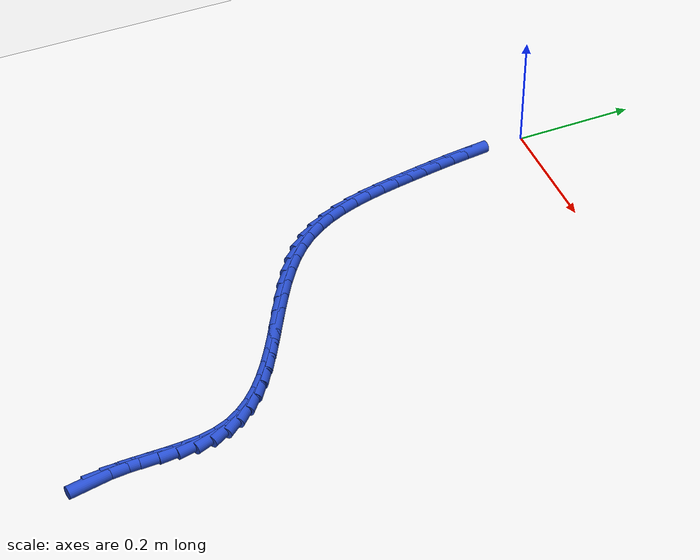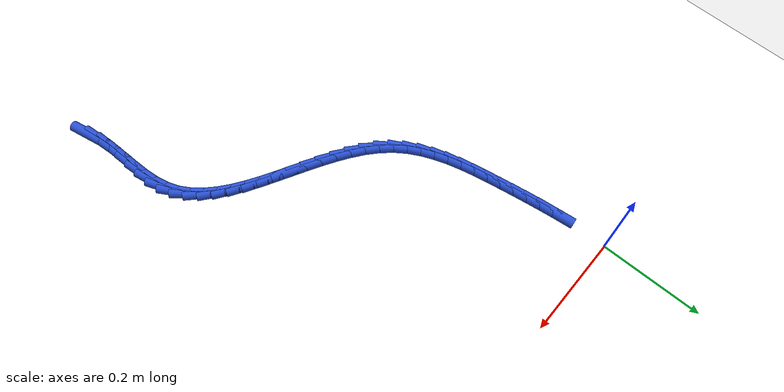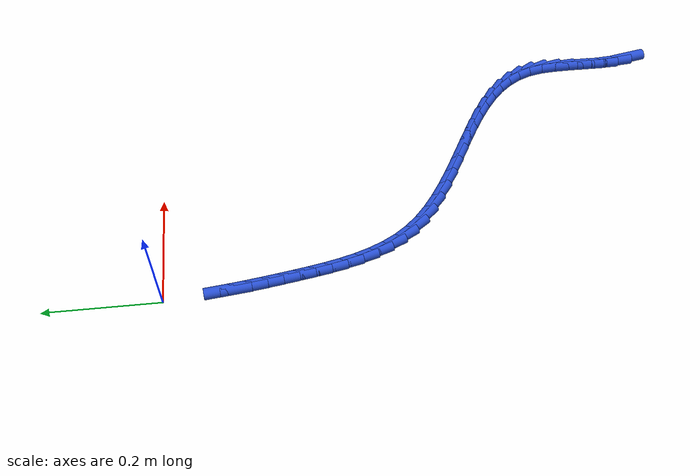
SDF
<sdf version="1.6">
 <world name="default">
  <model name="ground_plane">
   <static>1</static>
   <link name="link">
    <collision name="collision">
     <geometry><plane><normal>0 0 1</normal><size>100 100</size></plane></geometry>
     <surface><friction><ode><mu>100</mu><mu2>50</mu2></ode></friction></surface>
    </collision>
    <visual name="visual">
     <cast_shadows>0</cast_shadows>
     <geometry><plane><normal>0 0 1</normal><size>100 100</size></plane></geometry>
     <material>
      <script><uri>file://media/materials/scripts/gazebo.material</uri><name>Gazebo/WhiteGlow</name></script>
     </material>
    </visual>
   </link>
  </model>
  <model name="line">
   <link name="link_251">
    <pose>0.4408444635592077 -0.883192420209839 0.01 0 1.57 -1.3947402037816259</pose>
    <collision name="collision">
     <geometry><cylinder><radius>0.01</radius><length>0.08</length></cylinder></geometry>
    </collision>
    <visual name="visual">
     <material>
      <script><name>Gazebo/Blue</name><uri>file://media/materials/scripts/gazebo.material</uri></script>
     </material>
     <geometry><cylinder><radius>0.01</radius><length>0.08</length></cylinder></geometry>
    </visual>
   </link>
   <link name="link_252">
    <pose>0.43617822592328076 -0.8569625655048988 0.01 0 1.57 -1.4991536864253212</pose>
    <collision name="collision">
     <geometry><cylinder><radius>0.01</radius><length>0.08</length></cylinder></geometry>
    </collision>
    <visual name="visual">
     <material>
      <script><name>Gazebo/Blue</name><uri>file://media/materials/scripts/gazebo.material</uri></script>
     </material>
     <geometry><cylinder><radius>0.01</radius><length>0.08</length></cylinder></geometry>
    </visual>
   </link>
   <link name="link_253">
    <pose>0.4342095156849832 -0.8295300081652693 0.01 0 1.57 -1.5576714541863699</pose>
    <collision name="collision">
     <geometry><cylinder><radius>0.01</radius><length>0.08</length></cylinder></geometry>
    </collision>
    <visual name="visual">
     <material>
      <script><name>Gazebo/Blue</name><uri>file://media/materials/scripts/gazebo.material</uri></script>
     </material>
     <geometry><cylinder><radius>0.01</radius><length>0.08</length></cylinder></geometry>
    </visual>
   </link>
   <link name="link_254">
    <pose>0.4338409703866233 -0.8014517062298856 0.01 0 1.57 1.566029907035083</pose>
    <collision name="collision">
     <geometry><cylinder><radius>0.01</radius><length>0.08</length></cylinder></geometry>
    </collision>
    <visual name="visual">
     <material>
      <script><name>Gazebo/Blue</name><uri>file://media/materials/scripts/gazebo.material</uri></script>
     </material>
     <geometry><cylinder><radius>0.01</radius><length>0.08</length></cylinder></geometry>
    </visual>
   </link>
   <link name="link_255">
    <pose>0.43397522757050927 -0.7732846177376828 0.01 0 1.57 -1.5541797772770611</pose>
    <collision name="collision">
     <geometry><cylinder><radius>0.01</radius><length>0.08</length></cylinder></geometry>
    </collision>
    <visual name="visual">
     <material>
      <script><name>Gazebo/Blue</name><uri>file://media/materials/scripts/gazebo.material</uri></script>
     </material>
     <geometry><cylinder><radius>0.01</radius><length>0.08</length></cylinder></geometry>
    </visual>
   </link>
   <link name="link_256">
    <pose>0.4335149247789496 -0.7455857007275958 0.01 0 1.57 -1.4902838466227524</pose>
    <collision name="collision">
     <geometry><cylinder><radius>0.01</radius><length>0.08</length></cylinder></geometry>
    </collision>
    <visual name="visual">
     <material>
      <script><name>Gazebo/Blue</name><uri>file://media/materials/scripts/gazebo.material</uri></script>
     </material>
     <geometry><cylinder><radius>0.01</radius><length>0.08</length></cylinder></geometry>
    </visual>
   </link>
   <link name="link_257">
    <pose>0.4313626995542525 -0.7189119132385596 0.01 0 1.57 -1.3763466888115112</pose>
    <collision name="collision">
     <geometry><cylinder><radius>0.01</radius><length>0.08</length></cylinder></geometry>
    </collision>
    <visual name="visual">
     <material>
      <script><name>Gazebo/Blue</name><uri>file://media/materials/scripts/gazebo.material</uri></script>
     </material>
     <geometry><cylinder><radius>0.01</radius><length>0.08</length></cylinder></geometry>
    </visual>
   </link>
   <link name="link_258">
    <pose>0.4264211894387266 -0.6938202133095096 0.01 0 1.57 -1.2112769681815954</pose>
    <collision name="collision">
     <geometry><cylinder><radius>0.01</radius><length>0.08</length></cylinder></geometry>
    </collision>
    <visual name="visual">
     <material>
      <script><name>Gazebo/Blue</name><uri>file://media/materials/scripts/gazebo.material</uri></script>
     </material>
     <geometry><cylinder><radius>0.01</radius><length>0.08</length></cylinder></geometry>
    </visual>
   </link>
   <link name="link_259">
    <pose>0.4177608261677327 -0.6707783982119812 0.01 0 1.57 -1.041622514126524</pose>
    <collision name="collision">
     <geometry><cylinder><radius>0.01</radius><length>0.08</length></cylinder></geometry>
    </collision>
    <visual name="visual">
     <material>
      <script><name>Gazebo/Blue</name><uri>file://media/materials/scripts/gazebo.material</uri></script>
     </material>
     <geometry><cylinder><radius>0.01</radius><length>0.08</length></cylinder></geometry>
    </visual>
   </link>
   <link name="link_260">
    <pose>0.40544850444167446 -0.6497247748875288 0.01 0 1.57 -0.8937394726097482</pose>
    <collision name="collision">
     <geometry><cylinder><radius>0.01</radius><length>0.08</length></cylinder></geometry>
    </collision>
    <visual name="visual">
     <material>
      <script><name>Gazebo/Blue</name><uri>file://media/materials/scripts/gazebo.material</uri></script>
     </material>
     <geometry><cylinder><radius>0.01</radius><length>0.08</length></cylinder></geometry>
    </visual>
   </link>
   <link name="link_261">
    <pose>0.3899175247160373 -0.6304029533236097 0.01 0 1.57 -0.7724279903666368</pose>
    <collision name="collision">
     <geometry><cylinder><radius>0.01</radius><length>0.08</length></cylinder></geometry>
    </collision>
    <visual name="visual">
     <material>
      <script><name>Gazebo/Blue</name><uri>file://media/materials/scripts/gazebo.material</uri></script>
     </material>
     <geometry><cylinder><radius>0.01</radius><length>0.08</length></cylinder></geometry>
    </visual>
   </link>
   <link name="link_262">
    <pose>0.3716017539372945 -0.6125562424914758 0.01 0 1.57 -0.6775356685196819</pose>
    <collision name="collision">
     <geometry><cylinder><radius>0.01</radius><length>0.08</length></cylinder></geometry>
    </collision>
    <visual name="visual">
     <material>
      <script><name>Gazebo/Blue</name><uri>file://media/materials/scripts/gazebo.material</uri></script>
     </material>
     <geometry><cylinder><radius>0.01</radius><length>0.08</length></cylinder></geometry>
    </visual>
   </link>
   <link name="link_263">
    <pose>0.3509350590519195 -0.5959279513623792 0.01 0 1.57 -0.6064916375951365</pose>
    <collision name="collision">
     <geometry><cylinder><radius>0.01</radius><length>0.08</length></cylinder></geometry>
    </collision>
    <visual name="visual">
     <material>
      <script><name>Gazebo/Blue</name><uri>file://media/materials/scripts/gazebo.material</uri></script>
     </material>
     <geometry><cylinder><radius>0.01</radius><length>0.08</length></cylinder></geometry>
    </visual>
   </link>
   <link name="link_264">
    <pose>0.32835130700638576 -0.5802613889075715 0.01 0 1.57 -0.5561959937855093</pose>
    <collision name="collision">
     <geometry><cylinder><radius>0.01</radius><length>0.08</length></cylinder></geometry>
    </collision>
    <visual name="visual">
     <material>
      <script><name>Gazebo/Blue</name><uri>file://media/materials/scripts/gazebo.material</uri></script>
     </material>
     <geometry><cylinder><radius>0.01</radius><length>0.08</length></cylinder></geometry>
    </visual>
   </link>
   <link name="link_265">
    <pose>0.3042843647471674 -0.5652998640983055 0.01 0 1.57 -0.5239658561464715</pose>
    <collision name="collision">
     <geometry><cylinder><radius>0.01</radius><length>0.08</length></cylinder></geometry>
    </collision>
    <visual name="visual">
     <material>
      <script><name>Gazebo/Blue</name><uri>file://media/materials/scripts/gazebo.material</uri></script>
     </material>
     <geometry><cylinder><radius>0.01</radius><length>0.08</length></cylinder></geometry>
    </visual>
   </link>
   <link name="link_266">
    <pose>0.2791680992207362 -0.5507866859058319 0.01 0 1.57 -0.507873898520415</pose>
    <collision name="collision">
     <geometry><cylinder><radius>0.01</radius><length>0.08</length></cylinder></geometry>
    </collision>
    <visual name="visual">
     <material>
      <script><name>Gazebo/Blue</name><uri>file://media/materials/scripts/gazebo.material</uri></script>
     </material>
     <geometry><cylinder><radius>0.01</radius><length>0.08</length></cylinder></geometry>
    </visual>
   </link>
   <link name="link_267">
    <pose>0.25343637737356633 -0.5364651633014031 0.01 0 1.57 -0.506811652171168</pose>
    <collision name="collision">
     <geometry><cylinder><radius>0.01</radius><length>0.08</length></cylinder></geometry>
    </collision>
    <visual name="visual">
     <material>
      <script><name>Gazebo/Blue</name><uri>file://media/materials/scripts/gazebo.material</uri></script>
     </material>
     <geometry><cylinder><radius>0.01</radius><length>0.08</length></cylinder></geometry>
    </visual>
   </link>
   <link name="link_268">
    <pose>0.22752306615213125 -0.5220786052562711 0.01 0 1.57 -0.5204622944537323</pose>
    <collision name="collision">
     <geometry><cylinder><radius>0.01</radius><length>0.08</length></cylinder></geometry>
    </collision>
    <visual name="visual">
     <material>
      <script><name>Gazebo/Blue</name><uri>file://media/materials/scripts/gazebo.material</uri></script>
     </material>
     <geometry><cylinder><radius>0.01</radius><length>0.08</length></cylinder></geometry>
    </visual>
   </link>
   <link name="link_269">
    <pose>0.20186203250290435 -0.507370320741688 0.01 0 1.57 -0.5492566300694842</pose>
    <collision name="collision">
     <geometry><cylinder><radius>0.01</radius><length>0.08</length></cylinder></geometry>
    </collision>
    <visual name="visual">
     <material>
      <script><name>Gazebo/Blue</name><uri>file://media/materials/scripts/gazebo.material</uri></script>
     </material>
     <geometry><cylinder><radius>0.01</radius><length>0.08</length></cylinder></geometry>
    </visual>
   </link>
   <link name="link_270">
    <pose>0.17688714337235903 -0.49208361872890555 0.01 0 1.57 -0.5943187445434849</pose>
    <collision name="collision">
     <geometry><cylinder><radius>0.01</radius><length>0.08</length></cylinder></geometry>
    </collision>
    <visual name="visual">
     <material>
      <script><name>Gazebo/Blue</name><uri>file://media/materials/scripts/gazebo.material</uri></script>
     </material>
     <geometry><cylinder><radius>0.01</radius><length>0.08</length></cylinder></geometry>
    </visual>
   </link>
   <link name="link_271">
    <pose>0.15303226570696862 -0.47596180818917566 0.01 0 1.57 -0.6573554888255874</pose>
    <collision name="collision">
     <geometry><cylinder><radius>0.01</radius><length>0.08</length></cylinder></geometry>
    </collision>
    <visual name="visual">
     <material>
      <script><name>Gazebo/Blue</name><uri>file://media/materials/scripts/gazebo.material</uri></script>
     </material>
     <geometry><cylinder><radius>0.01</radius><length>0.08</length></cylinder></geometry>
    </visual>
   </link>
   <link name="link_272">
    <pose>0.1307312664532066 -0.4587481980937504 0.01 0 1.57 -0.7403832622163514</pose>
    <collision name="collision">
     <geometry><cylinder><radius>0.01</radius><length>0.08</length></cylinder></geometry>
    </collision>
    <visual name="visual">
     <material>
      <script><name>Gazebo/Blue</name><uri>file://media/materials/scripts/gazebo.material</uri></script>
     </material>
     <geometry><cylinder><radius>0.01</radius><length>0.08</length></cylinder></geometry>
    </visual>
   </link>
   <link name="link_273">
    <pose>0.1104180125575463 -0.4401860974138816 0.01 0 1.57 -0.8451196256164063</pose>
    <collision name="collision">
     <geometry><cylinder><radius>0.01</radius><length>0.08</length></cylinder></geometry>
    </collision>
    <visual name="visual">
     <material>
      <script><name>Gazebo/Blue</name><uri>file://media/materials/scripts/gazebo.material</uri></script>
     </material>
     <geometry><cylinder><radius>0.01</radius><length>0.08</length></cylinder></geometry>
    </visual>
   </link>
   <link name="link_274">
    <pose>0.09252637096646114 -0.4200188151208211 0.01 0 1.57 -0.966163990754632</pose>
    <collision name="collision">
     <geometry><cylinder><radius>0.01</radius><length>0.08</length></cylinder></geometry>
    </collision>
    <visual name="visual">
     <material>
      <script><name>Gazebo/Blue</name><uri>file://media/materials/scripts/gazebo.material</uri></script>
     </material>
     <geometry><cylinder><radius>0.01</radius><length>0.08</length></cylinder></geometry>
    </visual>
   </link>
   <link name="link_275">
    <pose>0.07736483218989325 -0.39807606606722545 0.01 0 1.57 -1.0781621633159084</pose>
    <collision name="collision">
     <geometry><cylinder><radius>0.01</radius><length>0.08</length></cylinder></geometry>
    </collision>
    <visual name="visual">
     <material>
      <script><name>Gazebo/Blue</name><uri>file://media/materials/scripts/gazebo.material</uri></script>
     </material>
     <geometry><cylinder><radius>0.01</radius><length>0.08</length></cylinder></geometry>
    </visual>
   </link>
   <link name="link_276">
    <pose>0.06473102848469069 -0.3745396341137115 0.01 0 1.57 -1.1732404867931931</pose>
    <collision name="collision">
     <geometry><cylinder><radius>0.01</radius><length>0.08</length></cylinder></geometry>
    </collision>
    <visual name="visual">
     <material>
      <script><name>Gazebo/Blue</name><uri>file://media/materials/scripts/gazebo.material</uri></script>
     </material>
     <geometry><cylinder><radius>0.01</radius><length>0.08</length></cylinder></geometry>
    </visual>
   </link>
   <link name="link_277">
    <pose>0.054292495979108624 -0.3496809616801069 0.01 0 1.57 -1.2511580069525636</pose>
    <collision name="collision">
     <geometry><cylinder><radius>0.01</radius><length>0.08</length></cylinder></geometry>
    </collision>
    <visual name="visual">
     <material>
      <script><name>Gazebo/Blue</name><uri>file://media/materials/scripts/gazebo.material</uri></script>
     </material>
     <geometry><cylinder><radius>0.01</radius><length>0.08</length></cylinder></geometry>
    </visual>
   </link>
   <link name="link_278">
    <pose>0.04571677077156389 -0.3237714912068034 0.01 0 1.57 -1.3127016129213336</pose>
    <collision name="collision">
     <geometry><cylinder><radius>0.01</radius><length>0.08</length></cylinder></geometry>
    </collision>
    <visual name="visual">
     <material>
      <script><name>Gazebo/Blue</name><uri>file://media/materials/scripts/gazebo.material</uri></script>
     </material>
     <geometry><cylinder><radius>0.01</radius><length>0.08</length></cylinder></geometry>
    </visual>
   </link>
   <link name="link_279">
    <pose>0.038671388960473355 -0.29708266513419235 0.01 0 1.57 -1.3590130190352918</pose>
    <collision name="collision">
     <geometry><cylinder><radius>0.01</radius><length>0.08</length></cylinder></geometry>
    </collision>
    <visual name="visual">
     <material>
      <script><name>Gazebo/Blue</name><uri>file://media/materials/scripts/gazebo.material</uri></script>
     </material>
     <geometry><cylinder><radius>0.01</radius><length>0.08</length></cylinder></geometry>
    </visual>
   </link>
   <link name="link_280">
    <pose>0.03282388664425402 -0.269885925902666 0.01 0 1.57 -1.3911464200228447</pose>
    <collision name="collision">
     <geometry><cylinder><radius>0.01</radius><length>0.08</length></cylinder></geometry>
    </collision>
    <visual name="visual">
     <material>
      <script><name>Gazebo/Blue</name><uri>file://media/materials/scripts/gazebo.material</uri></script>
     </material>
     <geometry><cylinder><radius>0.01</radius><length>0.08</length></cylinder></geometry>
    </visual>
   </link>
   <link name="link_281">
    <pose>0.0278417999213224 -0.24245271595261425 0.01 0 1.57 -1.4098139011685615</pose>
    <collision name="collision">
     <geometry><cylinder><radius>0.01</radius><length>0.08</length></cylinder></geometry>
    </collision>
    <visual name="visual">
     <material>
      <script><name>Gazebo/Blue</name><uri>file://media/materials/scripts/gazebo.material</uri></script>
     </material>
     <geometry><cylinder><radius>0.01</radius><length>0.08</length></cylinder></geometry>
    </visual>
   </link>
   <link name="link_282">
    <pose>0.023392664890095522 -0.21505447772442923 0.01 0 1.57 -1.4178568842636485</pose>
    <collision name="collision">
     <geometry><cylinder><radius>0.01</radius><length>0.08</length></cylinder></geometry>
    </collision>
    <visual name="visual">
     <material>
      <script><name>Gazebo/Blue</name><uri>file://media/materials/scripts/gazebo.material</uri></script>
     </material>
     <geometry><cylinder><radius>0.01</radius><length>0.08</length></cylinder></geometry>
    </visual>
   </link>
   <link name="link_283">
    <pose>0.019207776259764043 -0.18790511241937094 0.01 0 1.57 -1.425755610078809</pose>
    <collision name="collision">
     <geometry><cylinder><radius>0.01</radius><length>0.08</length></cylinder></geometry>
    </collision>
    <visual name="visual">
     <material>
      <script><name>Gazebo/Blue</name><uri>file://media/materials/scripts/gazebo.material</uri></script>
     </material>
     <geometry><cylinder><radius>0.01</radius><length>0.08</length></cylinder></geometry>
    </visual>
   </link>
   <link name="link_284">
    <pose>0.01527583020835155 -0.16098622007511973 0.01 0 1.57 -1.4361663509838967</pose>
    <collision name="collision">
     <geometry><cylinder><radius>0.01</radius><length>0.08</length></cylinder></geometry>
    </collision>
    <visual name="visual">
     <material>
      <script><name>Gazebo/Blue</name><uri>file://media/materials/scripts/gazebo.material</uri></script>
     </material>
     <geometry><cylinder><radius>0.01</radius><length>0.08</length></cylinder></geometry>
    </visual>
   </link>
   <link name="link_285">
    <pose>0.011650470519376833 -0.13422078643940416 0.01 0 1.57 -1.4490613124114797</pose>
    <collision name="collision">
     <geometry><cylinder><radius>0.01</radius><length>0.08</length></cylinder></geometry>
    </collision>
    <visual name="visual">
     <material>
      <script><name>Gazebo/Blue</name><uri>file://media/materials/scripts/gazebo.material</uri></script>
     </material>
     <geometry><cylinder><radius>0.01</radius><length>0.08</length></cylinder></geometry>
    </visual>
   </link>
   <link name="link_286">
    <pose>0.008385340978237897 -0.10753179725825678 0.01 0 1.57 -1.4643695995519146</pose>
    <collision name="collision">
     <geometry><cylinder><radius>0.01</radius><length>0.08</length></cylinder></geometry>
    </collision>
    <visual name="visual">
     <material>
      <script><name>Gazebo/Blue</name><uri>file://media/materials/scripts/gazebo.material</uri></script>
     </material>
     <geometry><cylinder><radius>0.01</radius><length>0.08</length></cylinder></geometry>
    </visual>
   </link>
  </model>
 </world>
</sdf>
